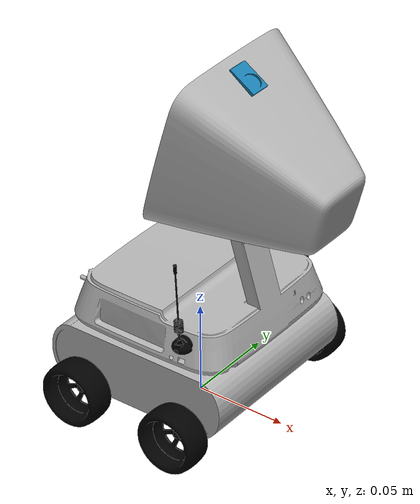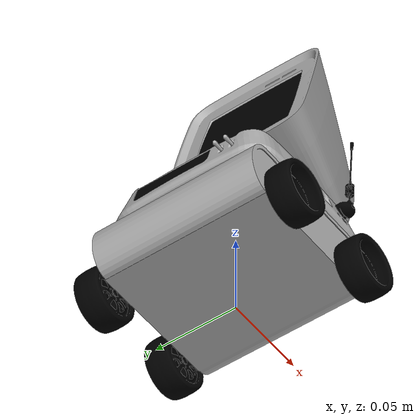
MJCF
<mujoco>

    <compiler angle="degree" coordinate="local"/>
    <option timestep="0.002" iterations="100" tolerance="1e-10" gravity="0 0 -10"/>

    <!-- ADDED: Keyframe definition for the "Home" position -->
    <!-- qpos values correspond to the order of joints defined below -->
    <!-- Order: j_top_y, j_top_z, j_top_cam, j_top_ant_r, j_top_ant_l -->

    <keyframe>
        <key name="home" qpos="1.85 0 0 1.52 1.52" ctrl="2.1 0 0 15 15"/> <!-- closed position-->
        <key name="open" qpos="0 0 0 0 0" ctrl="0 0 0 0 0"/>
    </keyframe>

    <asset>
    	<mesh name="car_mesh" file="../meshes/car.stl"/>
        <mesh name="bottom_mesh" file="../meshes/bottom1.stl"/>
        <mesh name="top_mesh" file="../meshes/top.stl"/>
        <mesh name="ant_r_mesh" file="../meshes/antenna_r.stl"/>
        <mesh name="ant_l_mesh" file="../meshes/antenna_l.stl"/>
        <mesh name="camera_mesh" file="../meshes/camera.stl"/>
        <mesh name="fl_wheel_mesh" file="../meshes/fl_wheel.stl"/>
        <mesh name="fr_wheel_mesh" file="../meshes/fr_wheel.stl"/>
        <mesh name="rr_wheel_mesh" file="../meshes/rr_wheel.stl"/>
        <mesh name="rl_wheel_mesh" file="../meshes/rl_wheel.stl"/>

        <texture name="display_top" type="2d" builtin="checker" width="512" height="512" rgb1="0 0 0" rgb2="0 0 0"/>
        <material name="display_matt" texture="display_top" specular="0.1" shininess="0.1" emission="3"/>

        <texture name="display_bottom"  type="2d" builtin="checker" width="512" height="256" rgb1="0 0 0" rgb2="0 0 0"/>
        <material name="display_matb" texture="display_bottom" specular="0.5" shininess="0.5"/>
    </asset>
    <worldbody>
    	<body name="car" pos="0 0 0.026">

    	    <geom type="mesh" mesh="car_mesh" rgba="0.7 0.7 0.7 1" mass="0"/>

            <body name="fl_wheel" pos="-0.06 -0.118 -0.0025">
                <joint name="j_fl_wheel" type="hinge" axis="0 1 0" pos="0.028 0.01 -0.0054" damping="0.5" stiffness="5" range="-360 360"/>
                <geom type="mesh" mesh="fl_wheel_mesh" rgba="0 0 0 1" mass="0.15" friction="1.2 0.01 0.002"/>
            </body>
            <!-- === FRONT RIGHT WHEEL === -->
             <body name="fr_wheel" pos="-0.06 0.118 -0.0045">
                 <joint name="j_fr_wheel" type="hinge" axis="0 1 0" pos="0.028 -0.1 -0.0054" damping="0.5" stiffness="5" range="-360 360"/>
                 <geom type="mesh" mesh="fr_wheel_mesh" rgba="0 0 0 1" mass="0.15"/>
            </body>
            <!-- === REAR RIGHT WHEEL === -->
            <body name="rr_wheel" pos="0.065 0.118 -0.0045">
                <joint name="j_rr_wheel" type="hinge" axis="0 1 0" pos="-0.038 -0.1 -0.0054" damping="0.5" stiffness="5" range="-360 360"/>
                <geom type="mesh" mesh="rr_wheel_mesh" rgba="0 0 0 1" mass="0.15"/>
            </body>
            <!-- === REAR LEFT WHEEL === -->
            <body name="rl_wheel" pos="0.065 -0.118 -0.0045">
                <joint name="j_rl_wheel" type="hinge" axis="0 1 0" pos="-0.038 0.01 -0.0054" damping="0.5" stiffness="5" range="-360 360"/>
                <geom type="mesh" mesh="rl_wheel_mesh" rgba="0 0 0 1" mass="0.15"/>
            </body>

            <body name="bottom" pos="0 -0.05 0.0475" euler="0 0 180">

                <geom type="mesh" mesh="bottom_mesh" rgba="0.7 0.7 0.7 1" density="300"/>
                <geom name="bottom_screen" type="box" size="0.0235 0.0066 0.0001" material="display_matb" pos="0.0445 -0.0577 -0.00875" euler="0 74 90.3"/>

                <body name="top" pos="-0.008 0 0.01">

                    <joint name="j_top_y" type="hinge" axis="0 1 0" range="0 106" damping="4" stiffness="10" armature="0.000001" pos="-0.027 -0.01 0.03"/>
                    <joint name="j_top_z" type="hinge" axis="0 0 1" range="-10 10" damping="20" stiffness="10" armature="0.01" pos="-0.027 -0.049 -0.01"/>

                    <geom type="mesh" mesh="top_mesh" rgba="0.7 0.7 0.7 1" density="300"/>
                    <geom name="screen_geom" type="box" size="0.032 0.0278 0.0001" material="display_matt" pos="-0.003 -0.0492 0.0728" euler="0 74 90" mass="0"/>

                    <body name="camera" pos="0.002 0 0.015">

                        <camera name="camera_top" pos="-0.025 0 0.1" euler="0 150 90"/>

                        <joint name="j_top_cam" type="hinge" pos="-0.015 0 0.097" range="0 90" damping="10" stiffness="50" armature="0.01" axis="0 1 0"/>

                        <geom type="mesh" mesh="camera_mesh" rgba="0.1 0.5 0.7 1"/>

                    </body>

                </body>

                <body name="antenna_right" pos="0 0 0.002">

                    <joint name="j_top_ant_r" type="hinge" axis="0 1 0" range="0 180" damping="0.1" stiffness="50" springref="10" pos="-0.025 -0.08 -0.01"/>

                    <geom type="mesh" mesh="ant_r_mesh" rgba="0 0 0 1"/>

                </body>

                <body name="antenna_left" pos="0 0 0.002">

                    <joint name="j_top_ant_l" type="hinge" axis="0 1 0" range="0 180" damping="0.1" stiffness="50" springref="10" pos="-0.027 0.08 -0.01"/>

                    <geom type="mesh" mesh="ant_l_mesh" rgba="0 0 0 1"/>

                </body>

            </body>

       </body>

    </worldbody>

    <actuator>

        <position name="servo_top_y"   joint="j_top_y"        kp="100"  ctrlrange="0 2.1"/>

        <position name="servo_top_z"   joint="j_top_z"        kp="90"   ctrlrange="-0.5 0.5"/>

        <position name="servo_top_com" joint="j_top_cam"      kp="50"   ctrlrange="0 3.5" />

        <position name="servo_ant_r"   joint="j_top_ant_r"    kp="5"    ctrlrange = "-10 15" />

        <position name="servo_ant_l"   joint="j_top_ant_l"    kp="5"    ctrlrange = "-10 15" />

    </actuator>

</mujoco>
